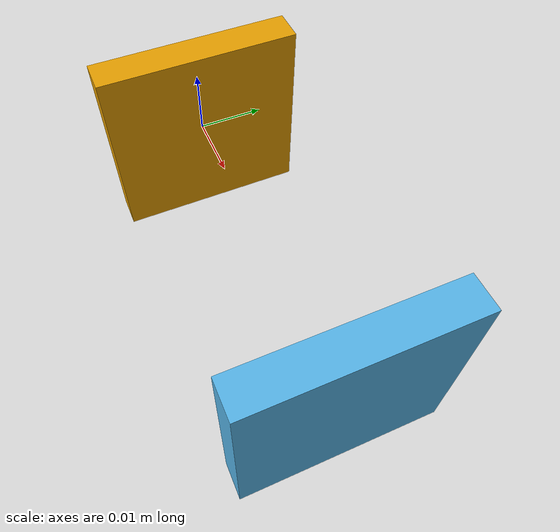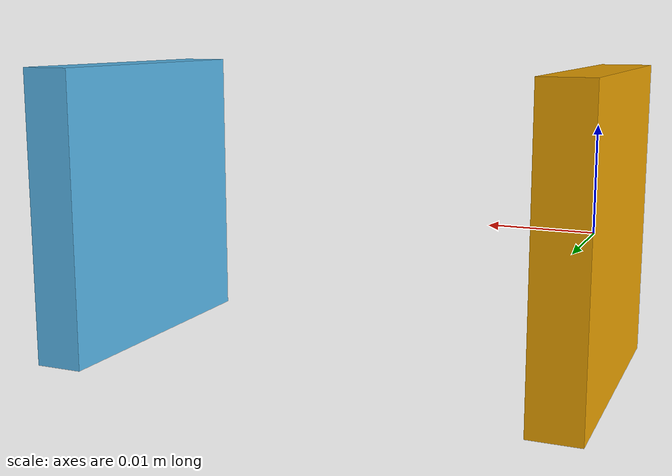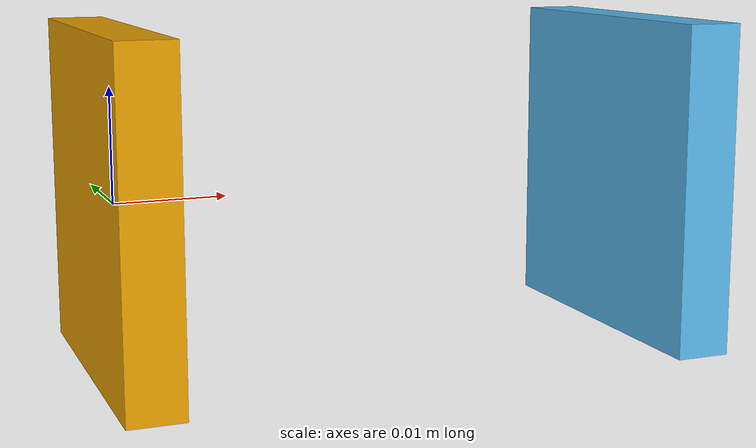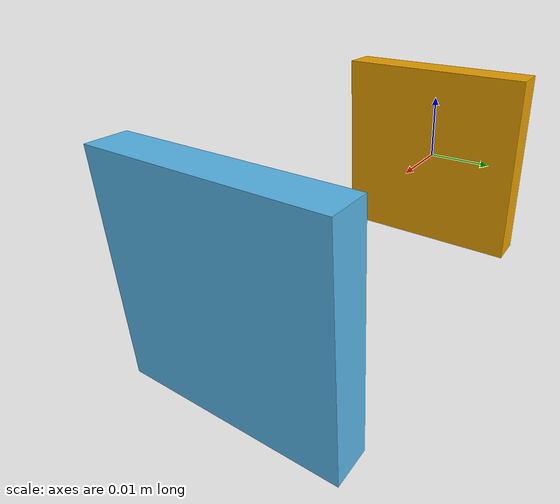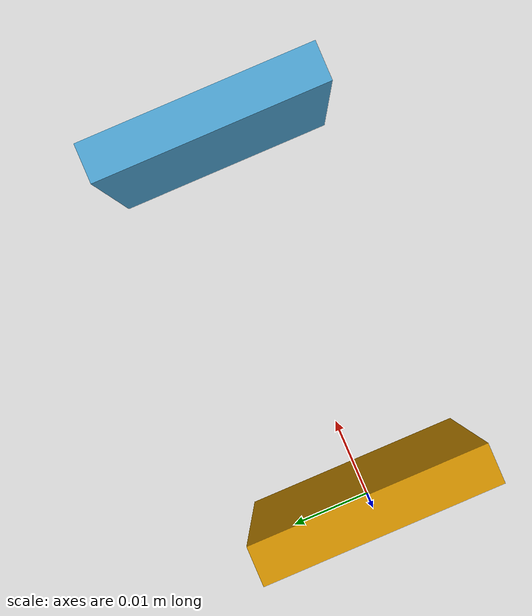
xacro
<?xml version="1.0" ?>
<robot xmlns:xacro="http://www.ros.org/wiki/xacro" xmlns:xi="http://www.w3.org/2001/XInclude" xmlns:gazebo="http://playerstage.sourceforge.net/gazebo/xmlschema/#gz" xmlns:model="http://playerstage.sourceforge.net/gazebo/xmlschema/#model" xmlns:sensor="http://playerstage.sourceforge.net/gazebo/xmlschema/#sensor" xmlns:body="http://playerstage.sourceforge.net/gazebo/xmlschema/#body" xmlns:geom="http://playerstage.sourceforge.net/gazebo/xmlschema/#geom" xmlns:joint="http://playerstage.sourceforge.net/gazebo/xmlschema/#joint" xmlns:interface="http://playerstage.sourceforge.net/gazebo/xmlschema/#interface" xmlns:rendering="http://playerstage.sourceforge.net/gazebo/xmlschema/#rendering" xmlns:renderable="http://playerstage.sourceforge.net/gazebo/xmlschema/#renderable" xmlns:controller="http://playerstage.sourceforge.net/gazebo/xmlschema/#controller" xmlns:physics="http://playerstage.sourceforge.net/gazebo/xmlschema/#physics" name="switch">
    <xacro:property name="robotname" value="test_switch" />
    <xacro:macro name="default_inertial" params="mass">
        <inertial>
            <mass value="${mass}" />
            <inertia ixx="1.0" ixy="0.0" ixz="0.0" iyy="1.0" iyz="0.0" izz="1.0" />
        </inertial>
    </xacro:macro>
    <!-- Links -->
    <link name="${robotname}_link1">
        <xacro:default_inertial mass="0.01" />
        <visual>
            <origin xyz="0 0 0" rpy="0 0 0" />
            <geometry>
                <box size="0.005 0.03 0.03" />
            </geometry>
        </visual>
        <collision>
            <geometry>
                <box size="0.005 0.03 0.03" />
            </geometry>
        </collision>
    </link>
    <link name="${robotname}_link2">
        <xacro:default_inertial mass="0.01" />
        <visual>
            <origin xyz="0 0 0" rpy="0 0 0" />
            <geometry>
                <box size="0.005 0.03 0.03" />
            </geometry>
        </visual>
        <collision>
            <geometry>
                <box size="0.005 0.03 0.03" />
            </geometry>
        </collision>
    </link>
    <!-- Joints -->
    <joint name="${robotname}_joint" type="fixed">
        <origin xyz="0.05 0 0" rpy="0 0 0" />
        <parent link="${robotname}_link1" />
        <child link="${robotname}_link2" />
    </joint>
    <gazebo reference="${robotname}_link">
        <sensor:ray name="${robotname}_link">
            <resRange>1</resRange>
            <rayCount>2</rayCount>
            <rangeCount>2</rangeCount>
            <laserCount>1</laserCount>
            <origin>0.0 0.0 0.0</origin>
            <displayRays>true</displayRays>
            <minAngle>-0.0</minAngle>
            <maxAngle>0.0</maxAngle>
            <minRange>0.0</minRange>
            <maxRange>0.5</maxRange>
            <updateRate>2.0</updateRate>
            <horizontalRayCount>2</horizontalRayCount>
            <horizontalRangeCount>2</horizontalRangeCount>
            <horizontalMinAngle>-0.0</horizontalMinAngle>
            <horizontalMaxAngle>0.0</horizontalMaxAngle>
            <controller:gazebo_ros_laser name="gazebo_ros_base_laser_link_controller" plugin="libgazebo_ros_laser.so">
                <gaussianNoise>0.005</gaussianNoise>
                <alwaysOn>true</alwaysOn>
                <updateRate>2.0</updateRate>
                <topicName>${robotname}_ray</topicName>
                <frameName>${robotname}_link</frameName>
                <interface:laser name="gazebo_ros_base_laser_workroom_iface" />
            </controller:gazebo_ros_laser>
        </sensor:ray>
        <material>Gazebo/Blue</material>
        <turnGravityOff>true</turnGravityOff>
    </gazebo>
    <gazebo reference="${robotname}_link1">
        <turnGravityOff>true</turnGravityOff>
    </gazebo>
</robot>
